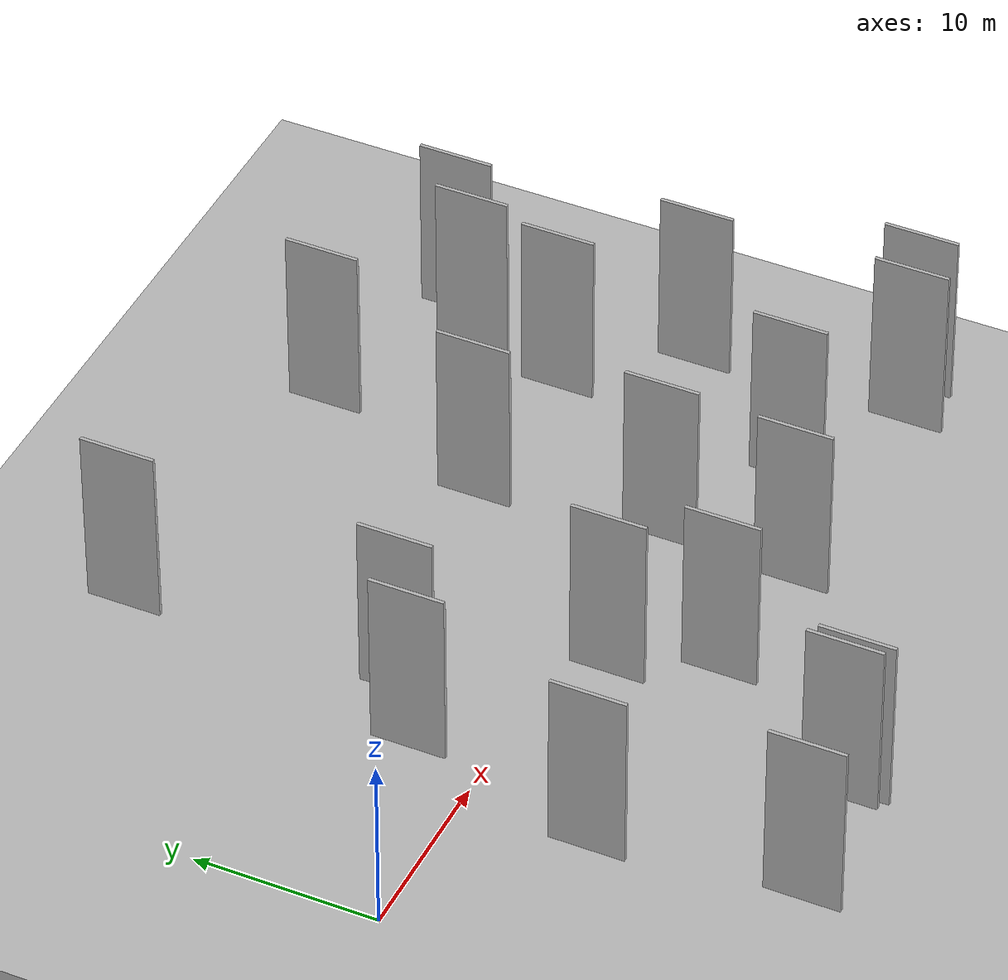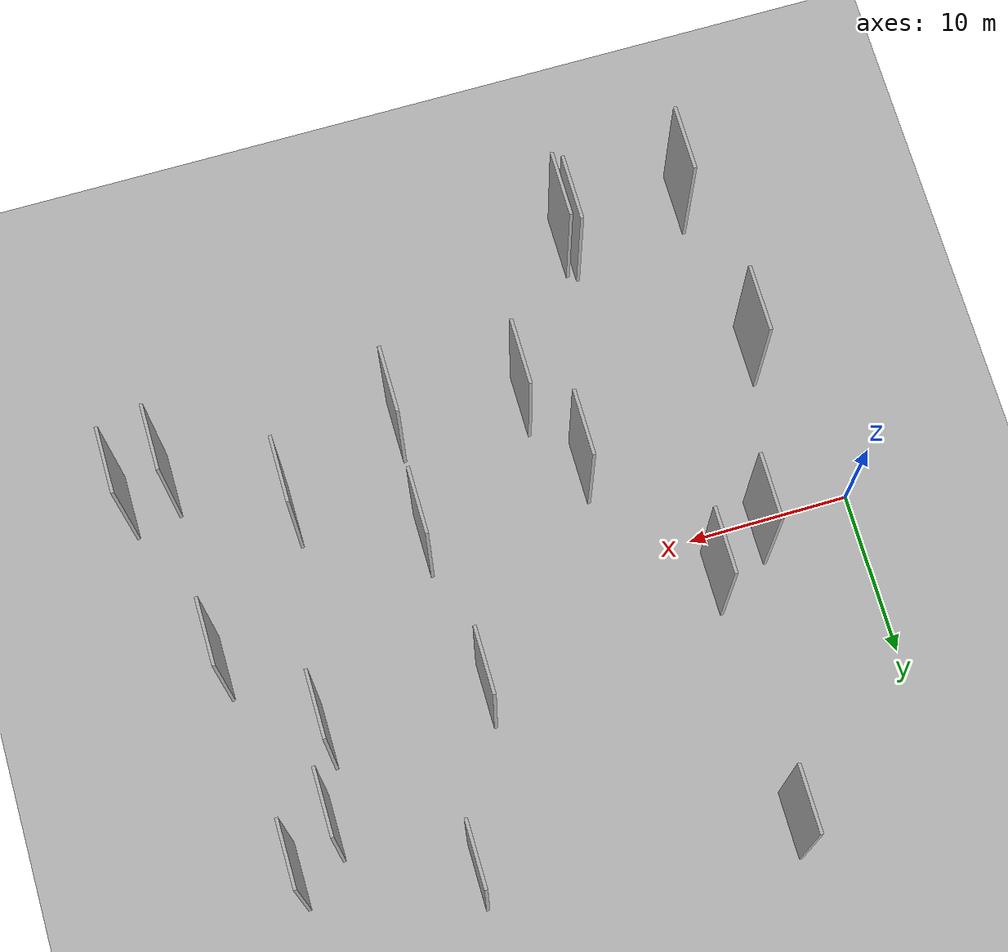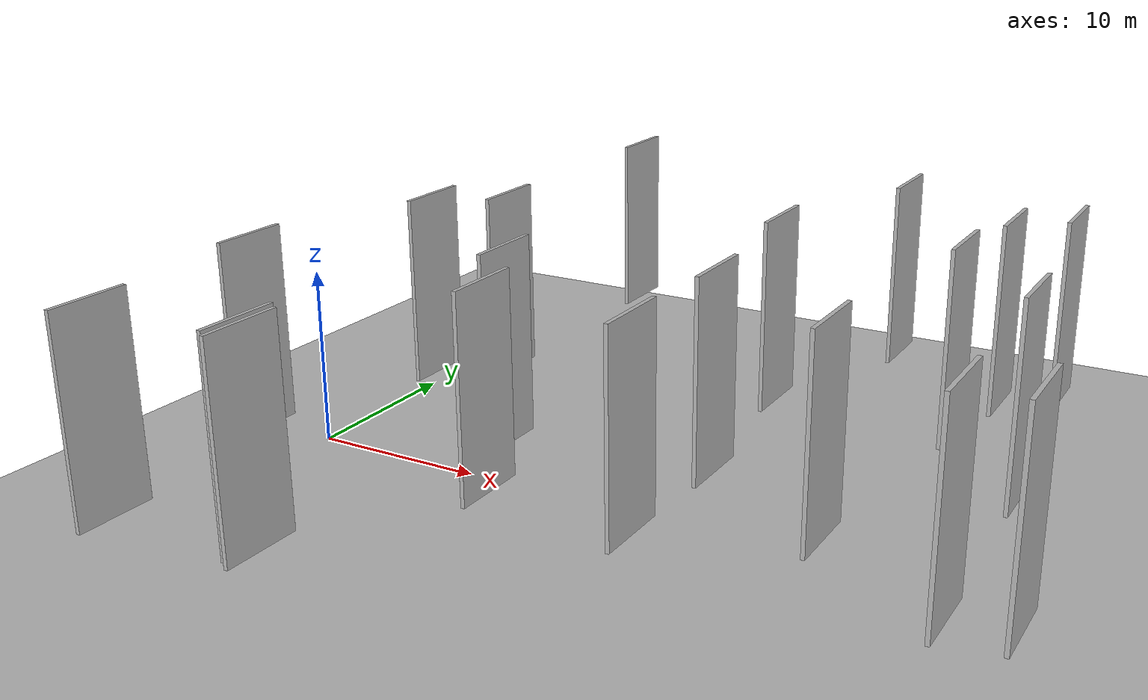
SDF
<?xml version="1.0" encoding="utf-8"?>

<sdf version="1.6">

   <world name="default">

      <gui fullscreen="0">

         <camera name="user_camera">

            <pose>-15 0 4.57585 0 0 0</pose>

            <view_controller>orbit</view_controller>

         </camera>

      </gui>

      <scene>

         <sky>

           <clouds>

             <speed>12</speed>

           </clouds>

         </sky>

         <ambient>0.4 0.4 0.4 1</ambient>

         <background>0.7 0.7 0.7 1</background>

         <shadows>1</shadows>

      </scene>

      <gravity>0 0 -9.8066</gravity>

      <magnetic_field>6e-06 2.3e-05 -4.2e-05</magnetic_field>

      <physics default="0" name="default_physics" type="ode">

         <ode>

            <solver>

               <type>quick</type>

               <iters>10</iters>

               <sor>1.0</sor>

               <use_dynamic_moi_rescaling>0</use_dynamic_moi_rescaling>

            </solver>

            <constraints>

               <cfm>0</cfm>

               <erp>0.2</erp>

               <contact_max_correcting_vel>100</contact_max_correcting_vel>

               <contact_surface_layer>0.001</contact_surface_layer>

            </constraints>

         </ode>

         <max_step_size>0.004</max_step_size>

         <real_time_factor>1</real_time_factor>

         <real_time_update_rate>250</real_time_update_rate>

      </physics>

      <light name="sun" type="directional">

         <cast_shadows>1</cast_shadows>

         <pose>0 0 10 0 0 0</pose>

         <diffuse>0.8 0.8 0.8 1</diffuse>

         <specular>0.2 0.2 0.2 1</specular>

         <attenuation>

            <range>1000</range>

            <constant>0.9</constant>

            <linear>0.01</linear>

            <quadratic>0.001</quadratic>

         </attenuation>

         <direction>-0.5 0.1 -0.9</direction>

      </light>

      <include>

         <name>ground_plane_1</name>

         <uri>model://HANNAS_ground_plane</uri>

         <pose>0 0 0  0 0 0</pose>

      </include>

      <include>

         <name>ground_plane_2</name>

         <uri>model://HANNAS_ground_plane</uri>

         <pose>100 0 0  0 0 0</pose>

      </include>

      <model name="HANNAS_wall_1">

         <static>1</static>

         <pose frame="">42.0587 -9.9786 5.0 0.000000 0.000000 1.570796</pose>

         <link name="link">

            <pose frame="">0 0 5.00 0 0 0</pose>

            <collision name="collision">

               <geometry>

                  <box>

                     <size>4.00 0.2 10.00</size>

                  </box>

               </geometry>

               <max_contacts>10</max_contacts>

               <surface>

                  <contact>

                     <ode/>

                  </contact>

                  <bounce/>

                  <friction>

                     <torsional>

                        <ode/>

                     </torsional>

                     <ode/>

                  </friction>

               </surface>

            </collision>

            <visual name="visual">

               <cast_shadows>0</cast_shadows>

               <geometry>

                  <box>

                     <size>4.00 0.2 10.00</size>

                  </box>

               </geometry>

               <material>

                  <script>

                     <uri>model://HANNAS_wall/materials/scripts</uri>

                     <uri>model://HANNAS_wall/materials/textures</uri>

                     <name>vrc/HANNAS_wall</name>

                  </script>

               </material>

            </visual>

            <self_collide>0</self_collide>

            <enable_wind>0</enable_wind>

            <kinematic>0</kinematic>

         </link>

      </model>

      <model name="HANNAS_wall_2">

         <static>1</static>

         <pose frame="">25.6457 -10.2068 5.0 0.000000 0.000000 1.570796</pose>

         <link name="link">

            <pose frame="">0 0 5.00 0 0 0</pose>

            <collision name="collision">

               <geometry>

                  <box>

                     <size>4.00 0.2 10.00</size>

                  </box>

               </geometry>

               <max_contacts>10</max_contacts>

               <surface>

                  <contact>

                     <ode/>

                  </contact>

                  <bounce/>

                  <friction>

                     <torsional>

                        <ode/>

                     </torsional>

                     <ode/>

                  </friction>

               </surface>

            </collision>

            <visual name="visual">

               <cast_shadows>0</cast_shadows>

               <geometry>

                  <box>

                     <size>4.00 0.2 10.00</size>

                  </box>

               </geometry>

               <material>

                  <script>

                     <uri>model://HANNAS_wall/materials/scripts</uri>

                     <uri>model://HANNAS_wall/materials/textures</uri>

                     <name>vrc/HANNAS_wall</name>

                  </script>

               </material>

            </visual>

            <self_collide>0</self_collide>

            <enable_wind>0</enable_wind>

            <kinematic>0</kinematic>

         </link>

      </model>

      <model name="HANNAS_wall_3">

         <static>1</static>

         <pose frame="">39.0529 1.0289 5.0 0.000000 0.000000 1.570796</pose>

         <link name="link">

            <pose frame="">0 0 5.00 0 0 0</pose>

            <collision name="collision">

               <geometry>

                  <box>

                     <size>4.00 0.2 10.00</size>

                  </box>

               </geometry>

               <max_contacts>10</max_contacts>

               <surface>

                  <contact>

                     <ode/>

                  </contact>

                  <bounce/>

                  <friction>

                     <torsional>

                        <ode/>

                     </torsional>

                     <ode/>

                  </friction>

               </surface>

            </collision>

            <visual name="visual">

               <cast_shadows>0</cast_shadows>

               <geometry>

                  <box>

                     <size>4.00 0.2 10.00</size>

                  </box>

               </geometry>

               <material>

                  <script>

                     <uri>model://HANNAS_wall/materials/scripts</uri>

                     <uri>model://HANNAS_wall/materials/textures</uri>

                     <name>vrc/HANNAS_wall</name>

                  </script>

               </material>

            </visual>

            <self_collide>0</self_collide>

            <enable_wind>0</enable_wind>

            <kinematic>0</kinematic>

         </link>

      </model>

      <model name="HANNAS_wall_4">

         <static>1</static>

         <pose frame="">18.0416 -9.7147 5.0 0.000000 0.000000 1.570796</pose>

         <link name="link">

            <pose frame="">0 0 5.00 0 0 0</pose>

            <collision name="collision">

               <geometry>

                  <box>

                     <size>4.00 0.2 10.00</size>

                  </box>

               </geometry>

               <max_contacts>10</max_contacts>

               <surface>

                  <contact>

                     <ode/>

                  </contact>

                  <bounce/>

                  <friction>

                     <torsional>

                        <ode/>

                     </torsional>

                     <ode/>

                  </friction>

               </surface>

            </collision>

            <visual name="visual">

               <cast_shadows>0</cast_shadows>

               <geometry>

                  <box>

                     <size>4.00 0.2 10.00</size>

                  </box>

               </geometry>

               <material>

                  <script>

                     <uri>model://HANNAS_wall/materials/scripts</uri>

                     <uri>model://HANNAS_wall/materials/textures</uri>

                     <name>vrc/HANNAS_wall</name>

                  </script>

               </material>

            </visual>

            <self_collide>0</self_collide>

            <enable_wind>0</enable_wind>

            <kinematic>0</kinematic>

         </link>

      </model>

      <model name="HANNAS_wall_5">

         <static>1</static>

         <pose frame="">10.2596 3.9694 5.0 0.000000 0.000000 1.570796</pose>

         <link name="link">

            <pose frame="">0 0 5.00 0 0 0</pose>

            <collision name="collision">

               <geometry>

                  <box>

                     <size>4.00 0.2 10.00</size>

                  </box>

               </geometry>

               <max_contacts>10</max_contacts>

               <surface>

                  <contact>

                     <ode/>

                  </contact>

                  <bounce/>

                  <friction>

                     <torsional>

                        <ode/>

                     </torsional>

                     <ode/>

                  </friction>

               </surface>

            </collision>

            <visual name="visual">

               <cast_shadows>0</cast_shadows>

               <geometry>

                  <box>

                     <size>4.00 0.2 10.00</size>

                  </box>

               </geometry>

               <material>

                  <script>

                     <uri>model://HANNAS_wall/materials/scripts</uri>

                     <uri>model://HANNAS_wall/materials/textures</uri>

                     <name>vrc/HANNAS_wall</name>

                  </script>

               </material>

            </visual>

            <self_collide>0</self_collide>

            <enable_wind>0</enable_wind>

            <kinematic>0</kinematic>

         </link>

      </model>

      <model name="HANNAS_wall_6">

         <static>1</static>

         <pose frame="">37.8726 13.9568 5.0 0.000000 0.000000 1.570796</pose>

         <link name="link">

            <pose frame="">0 0 5.00 0 0 0</pose>

            <collision name="collision">

               <geometry>

                  <box>

                     <size>4.00 0.2 10.00</size>

                  </box>

               </geometry>

               <max_contacts>10</max_contacts>

               <surface>

                  <contact>

                     <ode/>

                  </contact>

                  <bounce/>

                  <friction>

                     <torsional>

                        <ode/>

                     </torsional>

                     <ode/>

                  </friction>

               </surface>

            </collision>

            <visual name="visual">

               <cast_shadows>0</cast_shadows>

               <geometry>

                  <box>

                     <size>4.00 0.2 10.00</size>

                  </box>

               </geometry>

               <material>

                  <script>

                     <uri>model://HANNAS_wall/materials/scripts</uri>

                     <uri>model://HANNAS_wall/materials/textures</uri>

                     <name>vrc/HANNAS_wall</name>

                  </script>

               </material>

            </visual>

            <self_collide>0</self_collide>

            <enable_wind>0</enable_wind>

            <kinematic>0</kinematic>

         </link>

      </model>

      <model name="HANNAS_wall_7">

         <static>1</static>

         <pose frame="">39.3252 -10.5999 5.0 0.000000 0.000000 1.570796</pose>

         <link name="link">

            <pose frame="">0 0 5.00 0 0 0</pose>

            <collision name="collision">

               <geometry>

                  <box>

                     <size>4.00 0.2 10.00</size>

                  </box>

               </geometry>

               <max_contacts>10</max_contacts>

               <surface>

                  <contact>

                     <ode/>

                  </contact>

                  <bounce/>

                  <friction>

                     <torsional>

                        <ode/>

                     </torsional>

                     <ode/>

                  </friction>

               </surface>

            </collision>

            <visual name="visual">

               <cast_shadows>0</cast_shadows>

               <geometry>

                  <box>

                     <size>4.00 0.2 10.00</size>

                  </box>

               </geometry>

               <material>

                  <script>

                     <uri>model://HANNAS_wall/materials/scripts</uri>

                     <uri>model://HANNAS_wall/materials/textures</uri>

                     <name>vrc/HANNAS_wall</name>

                  </script>

               </material>

            </visual>

            <self_collide>0</self_collide>

            <enable_wind>0</enable_wind>

            <kinematic>0</kinematic>

         </link>

      </model>

      <model name="HANNAS_wall_8">

         <static>1</static>

         <pose frame="">24.8563 6.7742 5.0 0.000000 0.000000 1.570796</pose>

         <link name="link">

            <pose frame="">0 0 5.00 0 0 0</pose>

            <collision name="collision">

               <geometry>

                  <box>

                     <size>4.00 0.2 10.00</size>

                  </box>

               </geometry>

               <max_contacts>10</max_contacts>

               <surface>

                  <contact>

                     <ode/>

                  </contact>

                  <bounce/>

                  <friction>

                     <torsional>

                        <ode/>

                     </torsional>

                     <ode/>

                  </friction>

               </surface>

            </collision>

            <visual name="visual">

               <cast_shadows>0</cast_shadows>

               <geometry>

                  <box>

                     <size>4.00 0.2 10.00</size>

                  </box>

               </geometry>

               <material>

                  <script>

                     <uri>model://HANNAS_wall/materials/scripts</uri>

                     <uri>model://HANNAS_wall/materials/textures</uri>

                     <name>vrc/HANNAS_wall</name>

                  </script>

               </material>

            </visual>

            <self_collide>0</self_collide>

            <enable_wind>0</enable_wind>

            <kinematic>0</kinematic>

         </link>

      </model>

      <model name="HANNAS_wall_9">

         <static>1</static>

         <pose frame="">6.9019 1.7199 5.0 0.000000 0.000000 1.570796</pose>

         <link name="link">

            <pose frame="">0 0 5.00 0 0 0</pose>

            <collision name="collision">

               <geometry>

                  <box>

                     <size>4.00 0.2 10.00</size>

                  </box>

               </geometry>

               <max_contacts>10</max_contacts>

               <surface>

                  <contact>

                     <ode/>

                  </contact>

                  <bounce/>

                  <friction>

                     <torsional>

                        <ode/>

                     </torsional>

                     <ode/>

                  </friction>

               </surface>

            </collision>

            <visual name="visual">

               <cast_shadows>0</cast_shadows>

               <geometry>

                  <box>

                     <size>4.00 0.2 10.00</size>

                  </box>

               </geometry>

               <material>

                  <script>

                     <uri>model://HANNAS_wall/materials/scripts</uri>

                     <uri>model://HANNAS_wall/materials/textures</uri>

                     <name>vrc/HANNAS_wall</name>

                  </script>

               </material>

            </visual>

            <self_collide>0</self_collide>

            <enable_wind>0</enable_wind>

            <kinematic>0</kinematic>

         </link>

      </model>

      <model name="HANNAS_wall_10">

         <static>1</static>

         <pose frame="">15.8136 -4.7263 5.0 0.000000 0.000000 1.570796</pose>

         <link name="link">

            <pose frame="">0 0 5.00 0 0 0</pose>

            <collision name="collision">

               <geometry>

                  <box>

                     <size>4.00 0.2 10.00</size>

                  </box>

               </geometry>

               <max_contacts>10</max_contacts>

               <surface>

                  <contact>

                     <ode/>

                  </contact>

                  <bounce/>

                  <friction>

                     <torsional>

                        <ode/>

                     </torsional>

                     <ode/>

                  </friction>

               </surface>

            </collision>

            <visual name="visual">

               <cast_shadows>0</cast_shadows>

               <geometry>

                  <box>

                     <size>4.00 0.2 10.00</size>

                  </box>

               </geometry>

               <material>

                  <script>

                     <uri>model://HANNAS_wall/materials/scripts</uri>

                     <uri>model://HANNAS_wall/materials/textures</uri>

                     <name>vrc/HANNAS_wall</name>

                  </script>

               </material>

            </visual>

            <self_collide>0</self_collide>

            <enable_wind>0</enable_wind>

            <kinematic>0</kinematic>

         </link>

      </model>

      <model name="HANNAS_wall_11">

         <static>1</static>

         <pose frame="">25.9571 -2.9390 5.0 0.000000 0.000000 1.570796</pose>

         <link name="link">

            <pose frame="">0 0 5.00 0 0 0</pose>

            <collision name="collision">

               <geometry>

                  <box>

                     <size>4.00 0.2 10.00</size>

                  </box>

               </geometry>

               <max_contacts>10</max_contacts>

               <surface>

                  <contact>

                     <ode/>

                  </contact>

                  <bounce/>

                  <friction>

                     <torsional>

                        <ode/>

                     </torsional>

                     <ode/>

                  </friction>

               </surface>

            </collision>

            <visual name="visual">

               <cast_shadows>0</cast_shadows>

               <geometry>

                  <box>

                     <size>4.00 0.2 10.00</size>

                  </box>

               </geometry>

               <material>

                  <script>

                     <uri>model://HANNAS_wall/materials/scripts</uri>

                     <uri>model://HANNAS_wall/materials/textures</uri>

                     <name>vrc/HANNAS_wall</name>

                  </script>

               </material>

            </visual>

            <self_collide>0</self_collide>

            <enable_wind>0</enable_wind>

            <kinematic>0</kinematic>

         </link>

      </model>

      <model name="HANNAS_wall_12">

         <static>1</static>

         <pose frame="">12.9776 -18.8632 5.0 0.000000 0.000000 1.570796</pose>

         <link name="link">

            <pose frame="">0 0 5.00 0 0 0</pose>

            <collision name="collision">

               <geometry>

                  <box>

                     <size>4.00 0.2 10.00</size>

                  </box>

               </geometry>

               <max_contacts>10</max_contacts>

               <surface>

                  <contact>

                     <ode/>

                  </contact>

                  <bounce/>

                  <friction>

                     <torsional>

                        <ode/>

                     </torsional>

                     <ode/>

                  </friction>

               </surface>

            </collision>

            <visual name="visual">

               <cast_shadows>0</cast_shadows>

               <geometry>

                  <box>

                     <size>4.00 0.2 10.00</size>

                  </box>

               </geometry>

               <material>

                  <script>

                     <uri>model://HANNAS_wall/materials/scripts</uri>

                     <uri>model://HANNAS_wall/materials/textures</uri>

                     <name>vrc/HANNAS_wall</name>

                  </script>

               </material>

            </visual>

            <self_collide>0</self_collide>

            <enable_wind>0</enable_wind>

            <kinematic>0</kinematic>

         </link>

      </model>

      <model name="HANNAS_wall_13">

         <static>1</static>

         <pose frame="">4.1192 -9.0280 5.0 0.000000 0.000000 1.570796</pose>

         <link name="link">

            <pose frame="">0 0 5.00 0 0 0</pose>

            <collision name="collision">

               <geometry>

                  <box>

                     <size>4.00 0.2 10.00</size>

                  </box>

               </geometry>

               <max_contacts>10</max_contacts>

               <surface>

                  <contact>

                     <ode/>

                  </contact>

                  <bounce/>

                  <friction>

                     <torsional>

                        <ode/>

                     </torsional>

                     <ode/>

                  </friction>

               </surface>

            </collision>

            <visual name="visual">

               <cast_shadows>0</cast_shadows>

               <geometry>

                  <box>

                     <size>4.00 0.2 10.00</size>

                  </box>

               </geometry>

               <material>

                  <script>

                     <uri>model://HANNAS_wall/materials/scripts</uri>

                     <uri>model://HANNAS_wall/materials/textures</uri>

                     <name>vrc/HANNAS_wall</name>

                  </script>

               </material>

            </visual>

            <self_collide>0</self_collide>

            <enable_wind>0</enable_wind>

            <kinematic>0</kinematic>

         </link>

      </model>

      <model name="HANNAS_wall_14">

         <static>1</static>

         <pose frame="">32.8627 -6.8001 5.0 0.000000 0.000000 1.570796</pose>

         <link name="link">

            <pose frame="">0 0 5.00 0 0 0</pose>

            <collision name="collision">

               <geometry>

                  <box>

                     <size>4.00 0.2 10.00</size>

                  </box>

               </geometry>

               <max_contacts>10</max_contacts>

               <surface>

                  <contact>

                     <ode/>

                  </contact>

                  <bounce/>

                  <friction>

                     <torsional>

                        <ode/>

                     </torsional>

                     <ode/>

                  </friction>

               </surface>

            </collision>

            <visual name="visual">

               <cast_shadows>0</cast_shadows>

               <geometry>

                  <box>

                     <size>4.00 0.2 10.00</size>

                  </box>

               </geometry>

               <material>

                  <script>

                     <uri>model://HANNAS_wall/materials/scripts</uri>

                     <uri>model://HANNAS_wall/materials/textures</uri>

                     <name>vrc/HANNAS_wall</name>

                  </script>

               </material>

            </visual>

            <self_collide>0</self_collide>

            <enable_wind>0</enable_wind>

            <kinematic>0</kinematic>

         </link>

      </model>

      <model name="HANNAS_wall_15">

         <static>1</static>

         <pose frame="">35.2710 11.8261 5.0 0.000000 0.000000 1.570796</pose>

         <link name="link">

            <pose frame="">0 0 5.00 0 0 0</pose>

            <collision name="collision">

               <geometry>

                  <box>

                     <size>4.00 0.2 10.00</size>

                  </box>

               </geometry>

               <max_contacts>10</max_contacts>

               <surface>

                  <contact>

                     <ode/>

                  </contact>

                  <bounce/>

                  <friction>

                     <torsional>

                        <ode/>

                     </torsional>

                     <ode/>

                  </friction>

               </surface>

            </collision>

            <visual name="visual">

               <cast_shadows>0</cast_shadows>

               <geometry>

                  <box>

                     <size>4.00 0.2 10.00</size>

                  </box>

               </geometry>

               <material>

                  <script>

                     <uri>model://HANNAS_wall/materials/scripts</uri>

                     <uri>model://HANNAS_wall/materials/textures</uri>

                     <name>vrc/HANNAS_wall</name>

                  </script>

               </material>

            </visual>

            <self_collide>0</self_collide>

            <enable_wind>0</enable_wind>

            <kinematic>0</kinematic>

         </link>

      </model>

      <model name="HANNAS_wall_16">

         <static>1</static>

         <pose frame="">5.3109 -19.6310 5.0 0.000000 0.000000 1.570796</pose>

         <link name="link">

            <pose frame="">0 0 5.00 0 0 0</pose>

            <collision name="collision">

               <geometry>

                  <box>

                     <size>4.00 0.2 10.00</size>

                  </box>

               </geometry>

               <max_contacts>10</max_contacts>

               <surface>

                  <contact>

                     <ode/>

                  </contact>

                  <bounce/>

                  <friction>

                     <torsional>

                        <ode/>

                     </torsional>

                     <ode/>

                  </friction>

               </surface>

            </collision>

            <visual name="visual">

               <cast_shadows>0</cast_shadows>

               <geometry>

                  <box>

                     <size>4.00 0.2 10.00</size>

                  </box>

               </geometry>

               <material>

                  <script>

                     <uri>model://HANNAS_wall/materials/scripts</uri>

                     <uri>model://HANNAS_wall/materials/textures</uri>

                     <name>vrc/HANNAS_wall</name>

                  </script>

               </material>

            </visual>

            <self_collide>0</self_collide>

            <enable_wind>0</enable_wind>

            <kinematic>0</kinematic>

         </link>

      </model>

      <model name="HANNAS_wall_17">

         <static>1</static>

         <pose frame="">34.3094 6.5757 5.0 0.000000 0.000000 1.570796</pose>

         <link name="link">

            <pose frame="">0 0 5.00 0 0 0</pose>

            <collision name="collision">

               <geometry>

                  <box>

                     <size>4.00 0.2 10.00</size>

                  </box>

               </geometry>

               <max_contacts>10</max_contacts>

               <surface>

                  <contact>

                     <ode/>

                  </contact>

                  <bounce/>

                  <friction>

                     <torsional>

                        <ode/>

                     </torsional>

                     <ode/>

                  </friction>

               </surface>

            </collision>

            <visual name="visual">

               <cast_shadows>0</cast_shadows>

               <geometry>

                  <box>

                     <size>4.00 0.2 10.00</size>

                  </box>

               </geometry>

               <material>

                  <script>

                     <uri>model://HANNAS_wall/materials/scripts</uri>

                     <uri>model://HANNAS_wall/materials/textures</uri>

                     <name>vrc/HANNAS_wall</name>

                  </script>

               </material>

            </visual>

            <self_collide>0</self_collide>

            <enable_wind>0</enable_wind>

            <kinematic>0</kinematic>

         </link>

      </model>

      <model name="HANNAS_wall_18">

         <static>1</static>

         <pose frame="">28.1690 16.7615 5.0 0.000000 0.000000 1.570796</pose>

         <link name="link">

            <pose frame="">0 0 5.00 0 0 0</pose>

            <collision name="collision">

               <geometry>

                  <box>

                     <size>4.00 0.2 10.00</size>

                  </box>

               </geometry>

               <max_contacts>10</max_contacts>

               <surface>

                  <contact>

                     <ode/>

                  </contact>

                  <bounce/>

                  <friction>

                     <torsional>

                        <ode/>

                     </torsional>

                     <ode/>

                  </friction>

               </surface>

            </collision>

            <visual name="visual">

               <cast_shadows>0</cast_shadows>

               <geometry>

                  <box>

                     <size>4.00 0.2 10.00</size>

                  </box>

               </geometry>

               <material>

                  <script>

                     <uri>model://HANNAS_wall/materials/scripts</uri>

                     <uri>model://HANNAS_wall/materials/textures</uri>

                     <name>vrc/HANNAS_wall</name>

                  </script>

               </material>

            </visual>

            <self_collide>0</self_collide>

            <enable_wind>0</enable_wind>

            <kinematic>0</kinematic>

         </link>

      </model>

      <model name="HANNAS_wall_19">

         <static>1</static>

         <pose frame="">10.1955 18.8786 5.0 0.000000 0.000000 1.570796</pose>

         <link name="link">

            <pose frame="">0 0 5.00 0 0 0</pose>

            <collision name="collision">

               <geometry>

                  <box>

                     <size>4.00 0.2 10.00</size>

                  </box>

               </geometry>

               <max_contacts>10</max_contacts>

               <surface>

                  <contact>

                     <ode/>

                  </contact>

                  <bounce/>

                  <friction>

                     <torsional>

                        <ode/>

                     </torsional>

                     <ode/>

                  </friction>

               </surface>

            </collision>

            <visual name="visual">

               <cast_shadows>0</cast_shadows>

               <geometry>

                  <box>

                     <size>4.00 0.2 10.00</size>

                  </box>

               </geometry>

               <material>

                  <script>

                     <uri>model://HANNAS_wall/materials/scripts</uri>

                     <uri>model://HANNAS_wall/materials/textures</uri>

                     <name>vrc/HANNAS_wall</name>

                  </script>

               </material>

            </visual>

            <self_collide>0</self_collide>

            <enable_wind>0</enable_wind>

            <kinematic>0</kinematic>

         </link>

      </model>

      <model name="HANNAS_wall_20">

         <static>1</static>

         <pose frame="">12.4431 -18.4701 5.0 0.000000 0.000000 1.570796</pose>

         <link name="link">

            <pose frame="">0 0 5.00 0 0 0</pose>

            <collision name="collision">

               <geometry>

                  <box>

                     <size>4.00 0.2 10.00</size>

                  </box>

               </geometry>

               <max_contacts>10</max_contacts>

               <surface>

                  <contact>

                     <ode/>

                  </contact>

                  <bounce/>

                  <friction>

                     <torsional>

                        <ode/>

                     </torsional>

                     <ode/>

                  </friction>

               </surface>

            </collision>

            <visual name="visual">

               <cast_shadows>0</cast_shadows>

               <geometry>

                  <box>

                     <size>4.00 0.2 10.00</size>

                  </box>

               </geometry>

               <material>

                  <script>

                     <uri>model://HANNAS_wall/materials/scripts</uri>

                     <uri>model://HANNAS_wall/materials/textures</uri>

                     <name>vrc/HANNAS_wall</name>

                  </script>

               </material>

            </visual>

            <self_collide>0</self_collide>

            <enable_wind>0</enable_wind>

            <kinematic>0</kinematic>

         </link>

      </model>

   </world>

</sdf>

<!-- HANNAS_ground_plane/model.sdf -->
<sdf version="1.4">
<model name="HANNAS_ground_plane">
  <static>true</static>
    <link name="link">
      <collision name="collision">
        <geometry>
          <plane>
            <normal>0 0 1</normal>
            <size>1000 1000</size>
          </plane>
        </geometry>
        <surface>
          <friction>
            <ode>
              <mu>100</mu>
              <mu2>50</mu2>
            </ode>
          </friction>
        </surface>
      </collision>
      <visual name="visual">
        <cast_shadows>false</cast_shadows>
        <geometry>
          <plane>
            <normal>0 0 1</normal>
            <size>1000 1000</size>
          </plane>
        </geometry>
        <material>
          <script>
            <uri>model://HANNAS_ground_plane/materials/scripts/HANNAS_ground_plane.material</uri>
	    <uri>model://HANNAS_ground_plane/materials/textures</uri>
            <name>HANNASGroundPlane/Image</name>
          </script>
        </material>
      </visual>
    </link>
  </model>
</sdf>
